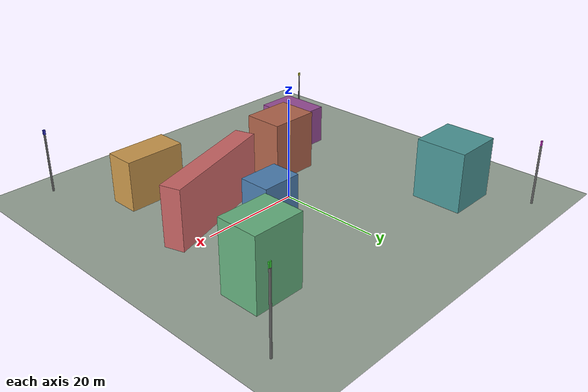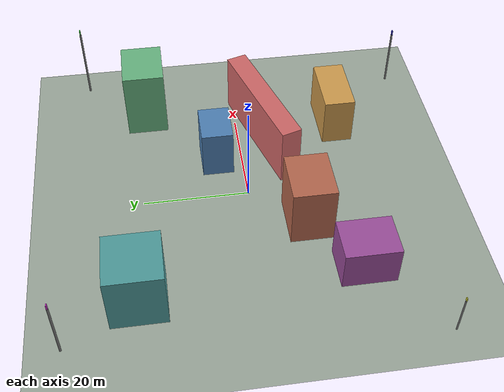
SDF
<?xml version="1.0" ?>
<!-- Scenario: Multi-gNB Deployment
     Demonstrates multiple base stations with coverage overlap and handover regions
     Expected: Best server analysis shows cell boundaries, SINR shows interference -->
<sdf version="1.8">
  <world name="scenario_multi_gnb">

    <physics name="1ms" type="ignored">
      <max_step_size>0.001</max_step_size>
      <real_time_factor>1.0</real_time_factor>
    </physics>

    <plugin filename="ignition-gazebo-physics-system"
            name="ignition::gazebo::systems::Physics"/>
    <plugin filename="ignition-gazebo-scene-broadcaster-system"
            name="ignition::gazebo::systems::SceneBroadcaster"/>
    <plugin filename="ignition-gazebo-user-commands-system"
            name="ignition::gazebo::systems::UserCommands"/>

    <plugin filename="libHeatmapPlugin.so"
            name="heatmap_plugin::HeatmapPlugin">
      <!-- Grid configuration -->
      <grid_w>128</grid_w>
      <grid_h>128</grid_h>
      <cell_size>0.75</cell_size>

      <!-- Global RF defaults (used when per-gNB values not specified) -->
      <frequency_hz>3500000000</frequency_hz>
      <tx_dbm>30.0</tx_dbm>
      <tx_height>10.0</tx_height>
      <rx_height>1.5</rx_height>
      <tx_gain_dbi>8.0</tx_gain_dbi>
      <rx_gain_dbi>0.0</rx_gain_dbi>

      <!-- Propagation model -->
      <propagation_model>3gpp_umi</propagation_model>

      <!-- Material/obstacle properties -->
      <wall_loss_db>15.0</wall_loss_db>
      <reflection_coeff>0.7</reflection_coeff>

      <!-- Signal combination: best_server, sum_power, interference/sinr -->
      <combine_mode>best_server</combine_mode>

      <!-- Shadowing disabled for clearer cell boundary visualization -->
      <include_shadowing>false</include_shadowing>

      <!-- Ray tracing options -->
      <max_reflections>2</max_reflections>
      <max_diffractions>1</max_diffractions>

      <!-- gNB 0: Central site (default parameters) -->
      <gnb name="Site_Central">
        <pose>0 0 12 0 0 0</pose>
        <tx_power>30</tx_power>
        <tx_gain>8</tx_gain>
      </gnb>

      <!-- gNB 1: Northeast site (higher power) -->
      <gnb name="Site_NE">
        <pose>35 30 15 0 0 0</pose>
        <tx_power>33</tx_power>
        <tx_gain>10</tx_gain>
      </gnb>

      <!-- gNB 2: Southeast site -->
      <gnb name="Site_SE">
        <pose>30 -35 12 0 0 0</pose>
        <tx_power>30</tx_power>
        <tx_gain>8</tx_gain>
      </gnb>

      <!-- gNB 3: Southwest site (lower power small cell) -->
      <gnb name="Site_SW">
        <pose>-35 -30 8 0 0 0</pose>
        <tx_power>27</tx_power>
        <tx_gain>6</tx_gain>
      </gnb>

      <!-- gNB 4: Northwest site -->
      <gnb name="Site_NW">
        <pose>-30 35 12 0 0 0</pose>
        <tx_power>30</tx_power>
        <tx_gain>8</tx_gain>
      </gnb>
    </plugin>

    <!-- GUI Configuration -->
    <gui fullscreen="0">
      <plugin filename="GzScene3D" name="3D View">
        <ignition-gui>
          <title>3D View</title>
          <property type="bool" key="showTitleBar">true</property>
          <property type="string" key="state">docked</property>
        </ignition-gui>
        <engine>ogre2</engine>
        <scene>scene</scene>
        <ambient_light>0.4 0.4 0.4</ambient_light>
        <background_color>0.8 0.8 0.8</background_color>
        <camera_pose>60 -60 50 0 0.6 2.35</camera_pose>
      </plugin>

      <plugin filename="WorldControl" name="World control">
        <ignition-gui>
          <title>World control</title>
          <property type="bool" key="showTitleBar">false</property>
          <property type="bool" key="resizable">false</property>
          <property type="double" key="height">72</property>
          <property type="double" key="width">121</property>
          <property type="double" key="z">1</property>
          <property type="string" key="state">floating</property>
          <anchors target="3D View">
            <line own="left" target="left"/>
            <line own="bottom" target="bottom"/>
          </anchors>
        </ignition-gui>
        <play_pause>true</play_pause>
        <step>true</step>
        <start_paused>false</start_paused>
      </plugin>

      <plugin filename="ImageDisplay" name="RF Heatmap">
        <ignition-gui>
          <title>RF Signal Heatmap (Multi-gNB)</title>
          <property type="bool" key="showTitleBar">true</property>
          <property type="string" key="state">docked</property>
        </ignition-gui>
        <topic>/gnb/heatmap</topic>
      </plugin>

      <plugin filename="EntityTree" name="Entity tree">
        <ignition-gui>
          <title>Entity tree</title>
          <property type="bool" key="showTitleBar">true</property>
          <property type="string" key="state">docked</property>
        </ignition-gui>
      </plugin>
    </gui>

    <!-- Lighting -->
    <light type="directional" name="sun">
      <cast_shadows>true</cast_shadows>
      <pose>0 0 50 0 0 0</pose>
      <diffuse>0.8 0.8 0.8 1</diffuse>
      <specular>0.2 0.2 0.2 1</specular>
      <direction>-0.5 0.1 -0.9</direction>
    </light>

    <!-- Ground Plane -->
    <model name="ground_plane">
      <static>true</static>
      <link name="link">
        <collision name="collision">
          <geometry>
            <plane><normal>0 0 1</normal><size>200 200</size></plane>
          </geometry>
        </collision>
        <visual name="visual">
          <geometry>
            <plane><normal>0 0 1</normal><size>200 200</size></plane>
          </geometry>
          <material>
            <ambient>0.6 0.65 0.6 1</ambient>
            <diffuse>0.6 0.65 0.6 1</diffuse>
          </material>
        </visual>
      </link>
    </model>

    <!-- Visual markers for gNB sites -->

    <!-- Central Tower -->
    <model name="gnb_tower_central">
      <static>true</static>
      <pose>0 0 6 0 0 0</pose>
      <link name="tower_link">
        <visual name="pole">
          <geometry><cylinder><radius>0.2</radius><length>12</length></cylinder></geometry>
          <material><ambient>0.4 0.4 0.4 1</ambient></material>
        </visual>
        <visual name="antenna">
          <pose>0 0 6.5 0 0 0</pose>
          <geometry><box><size>0.5 0.2 1.0</size></box></geometry>
          <material><ambient>0.8 0.2 0.2 1</ambient></material>
        </visual>
      </link>
    </model>

    <!-- NE Tower -->
    <model name="gnb_tower_ne">
      <static>true</static>
      <pose>35 30 7.5 0 0 0</pose>
      <link name="tower_link">
        <visual name="pole">
          <geometry><cylinder><radius>0.2</radius><length>15</length></cylinder></geometry>
          <material><ambient>0.4 0.4 0.4 1</ambient></material>
        </visual>
        <visual name="antenna">
          <pose>0 0 8 0 0 0</pose>
          <geometry><box><size>0.5 0.2 1.0</size></box></geometry>
          <material><ambient>0.2 0.8 0.2 1</ambient></material>
        </visual>
      </link>
    </model>

    <!-- SE Tower -->
    <model name="gnb_tower_se">
      <static>true</static>
      <pose>30 -35 6 0 0 0</pose>
      <link name="tower_link">
        <visual name="pole">
          <geometry><cylinder><radius>0.2</radius><length>12</length></cylinder></geometry>
          <material><ambient>0.4 0.4 0.4 1</ambient></material>
        </visual>
        <visual name="antenna">
          <pose>0 0 6.5 0 0 0</pose>
          <geometry><box><size>0.5 0.2 1.0</size></box></geometry>
          <material><ambient>0.2 0.2 0.8 1</ambient></material>
        </visual>
      </link>
    </model>

    <!-- SW Tower (smaller) -->
    <model name="gnb_tower_sw">
      <static>true</static>
      <pose>-35 -30 4 0 0 0</pose>
      <link name="tower_link">
        <visual name="pole">
          <geometry><cylinder><radius>0.15</radius><length>8</length></cylinder></geometry>
          <material><ambient>0.4 0.4 0.4 1</ambient></material>
        </visual>
        <visual name="antenna">
          <pose>0 0 4.5 0 0 0</pose>
          <geometry><box><size>0.4 0.15 0.7</size></box></geometry>
          <material><ambient>0.8 0.8 0.2 1</ambient></material>
        </visual>
      </link>
    </model>

    <!-- NW Tower -->
    <model name="gnb_tower_nw">
      <static>true</static>
      <pose>-30 35 6 0 0 0</pose>
      <link name="tower_link">
        <visual name="pole">
          <geometry><cylinder><radius>0.2</radius><length>12</length></cylinder></geometry>
          <material><ambient>0.4 0.4 0.4 1</ambient></material>
        </visual>
        <visual name="antenna">
          <pose>0 0 6.5 0 0 0</pose>
          <geometry><box><size>0.5 0.2 1.0</size></box></geometry>
          <material><ambient>0.8 0.2 0.8 1</ambient></material>
        </visual>
      </link>
    </model>

    <!-- Buildings to create interesting coverage patterns -->

    <!-- Central area buildings -->
    <model name="building_central_1">
      <static>true</static>
      <pose>10 5 5 0 0 0</pose>
      <link name="link">
        <collision name="collision"><geometry><box><size>8 6 10</size></box></geometry></collision>
        <visual name="visual">
          <geometry><box><size>8 6 10</size></box></geometry>
          <material>
            <ambient>0.2 0.4 0.6 1</ambient>
            <diffuse>0.3 0.5 0.7 1</diffuse>
            <specular>0.1 0.1 0.1 1</specular>
            <emissive>0 0 0 1</emissive>
          </material>
        </visual>
      </link>
    </model>

    <model name="building_central_2">
      <static>true</static>
      <pose>-8 -10 6 0 0 0</pose>
      <link name="link">
        <collision name="collision"><geometry><box><size>10 8 12</size></box></geometry></collision>
        <visual name="visual">
          <geometry><box><size>10 8 12</size></box></geometry>
          <material>
            <ambient>0.6 0.3 0.2 1</ambient>
            <diffuse>0.7 0.4 0.3 1</diffuse>
            <specular>0.1 0.1 0.1 1</specular>
            <emissive>0 0 0 1</emissive>
          </material>
        </visual>
      </link>
    </model>

    <!-- NE quadrant buildings -->
    <model name="building_ne_1">
      <static>true</static>
      <pose>25 18 7 0 0 0</pose>
      <link name="link">
        <collision name="collision"><geometry><box><size>10 8 14</size></box></geometry></collision>
        <visual name="visual">
          <geometry><box><size>10 8 14</size></box></geometry>
          <material>
            <ambient>0.3 0.6 0.4 1</ambient>
            <diffuse>0.4 0.7 0.5 1</diffuse>
            <specular>0.1 0.1 0.1 1</specular>
            <emissive>0 0 0 1</emissive>
          </material>
        </visual>
      </link>
    </model>

    <!-- SE quadrant buildings -->
    <model name="building_se_1">
      <static>true</static>
      <pose>18 -20 5 0 0 0</pose>
      <link name="link">
        <collision name="collision"><geometry><box><size>12 6 10</size></box></geometry></collision>
        <visual name="visual">
          <geometry><box><size>12 6 10</size></box></geometry>
          <material>
            <ambient>0.6 0.5 0.2 1</ambient>
            <diffuse>0.8 0.6 0.3 1</diffuse>
            <specular>0.1 0.1 0.1 1</specular>
            <emissive>0 0 0 1</emissive>
          </material>
        </visual>
      </link>
    </model>

    <!-- SW quadrant buildings -->
    <model name="building_sw_1">
      <static>true</static>
      <pose>-20 -18 4 0 0 0</pose>
      <link name="link">
        <collision name="collision"><geometry><box><size>8 10 8</size></box></geometry></collision>
        <visual name="visual">
          <geometry><box><size>8 10 8</size></box></geometry>
          <material>
            <ambient>0.5 0.2 0.5 1</ambient>
            <diffuse>0.6 0.3 0.6 1</diffuse>
            <specular>0.1 0.1 0.1 1</specular>
            <emissive>0 0 0 1</emissive>
          </material>
        </visual>
      </link>
    </model>

    <!-- NW quadrant buildings -->
    <model name="building_nw_1">
      <static>true</static>
      <pose>-22 22 6 0 0 0</pose>
      <link name="link">
        <collision name="collision"><geometry><box><size>10 10 12</size></box></geometry></collision>
        <visual name="visual">
          <geometry><box><size>10 10 12</size></box></geometry>
          <material>
            <ambient>0.2 0.5 0.5 1</ambient>
            <diffuse>0.3 0.6 0.6 1</diffuse>
            <specular>0.1 0.1 0.1 1</specular>
            <emissive>0 0 0 1</emissive>
          </material>
        </visual>
      </link>
    </model>

    <!-- Long building creating interesting handover boundary -->
    <model name="building_barrier">
      <static>true</static>
      <pose>15 -5 6 0 0 0.3</pose>
      <link name="link">
        <collision name="collision"><geometry><box><size>25 4 12</size></box></geometry></collision>
        <visual name="visual">
          <geometry><box><size>25 4 12</size></box></geometry>
          <material>
            <ambient>0.7 0.3 0.3 1</ambient>
            <diffuse>0.8 0.4 0.4 1</diffuse>
            <specular>0.2 0.1 0.1 1</specular>
            <emissive>0 0 0 1</emissive>
          </material>
        </visual>
      </link>
    </model>

  </world>
</sdf>
